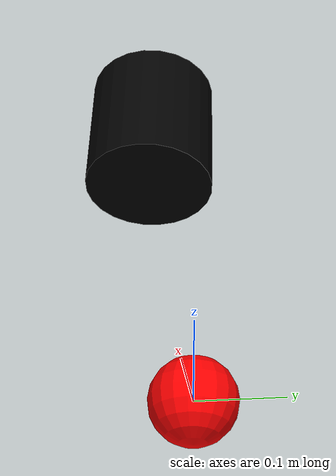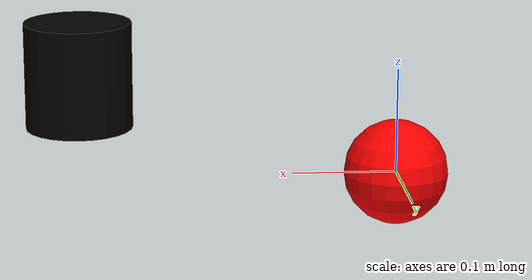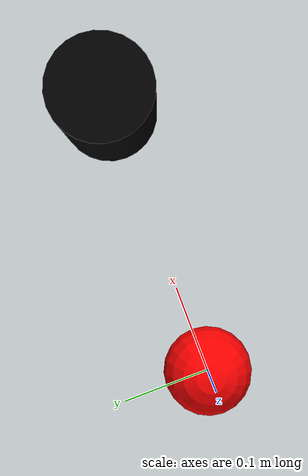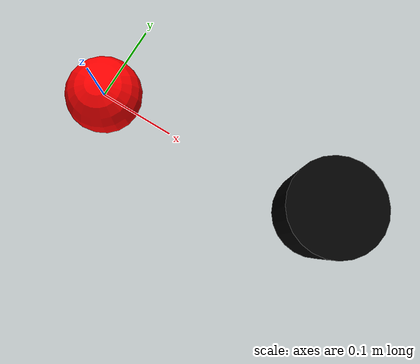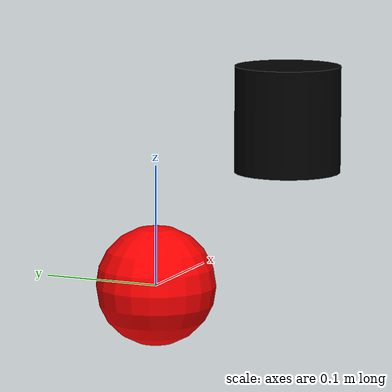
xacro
<?xml version="1.0"?>
<robot name="handheld_laser" xmlns:xacro="http://wiki.ros.org/xacro">

  <!-- 基础坐标系（可视为手持位置的坐标系） -->
  <link name="base_link">
    <visual>
      <origin xyz="0 0 0" rpy="0 0 0"/>
      <geometry>
        <sphere radius="0.05"/> <!-- 用一个小球表示手持位置 -->
      </geometry>
      <material name="red">
        <color rgba="1 0 0 1"/>
      </material>
    </visual>
  </link>

  <!-- 雷达坐标系 -->
  <link name="laser_link">
    <visual>
      <origin xyz="0 0 0" rpy="0 0 0"/>
      <geometry>
        <cylinder length="0.1" radius="0.05"/> <!-- 雷达模型 -->
      </geometry>
      <material name="black">
        <color rgba="0 0 0 1"/>
      </material>
    </visual>
  </link>

  <!-- 雷达与手持位置的固定关节 -->
  <joint name="base_to_laser_joint" type="fixed">
    <parent link="base_link"/>
    <child link="laser_link"/>
    <!-- 雷达相对手持位置的偏移（根据实际握持方式调整） -->
    <!-- 例如：前方0.3米，上方0.1米 -->
    <origin xyz="0.3 0 0.1" rpy="0 0 0"/>
  </joint>

</robot>
